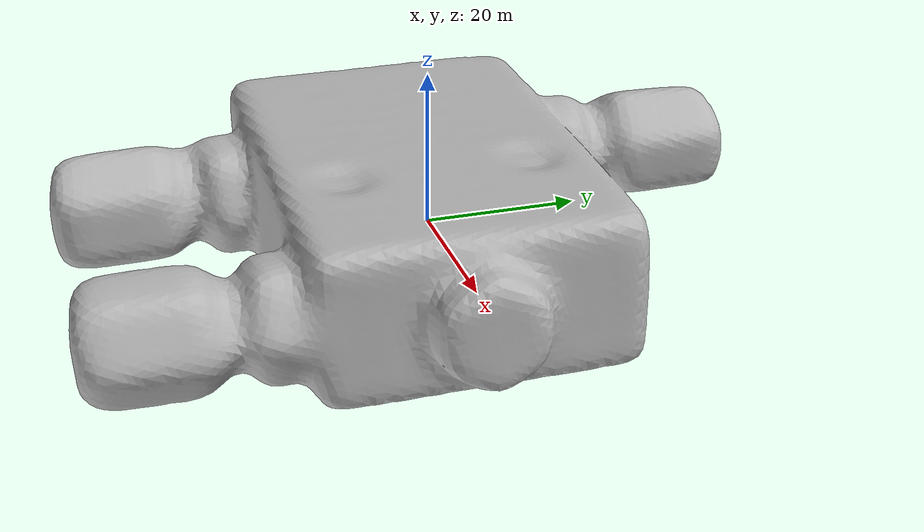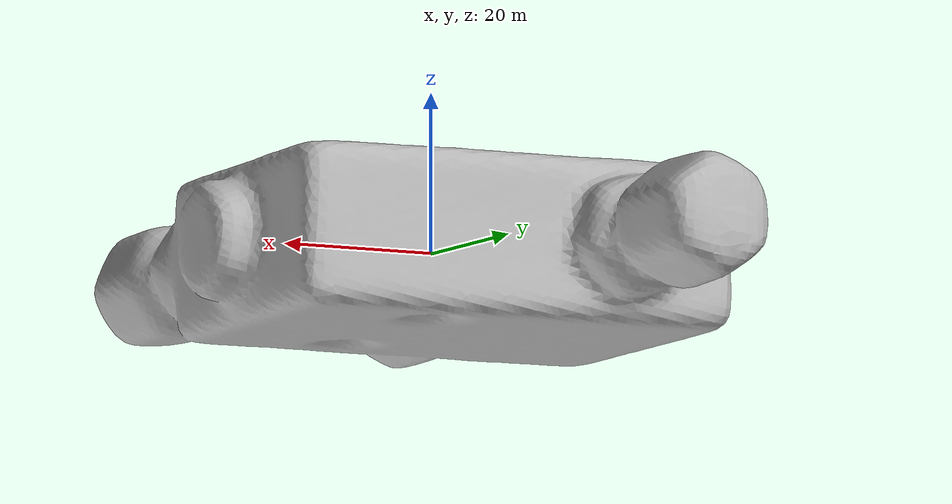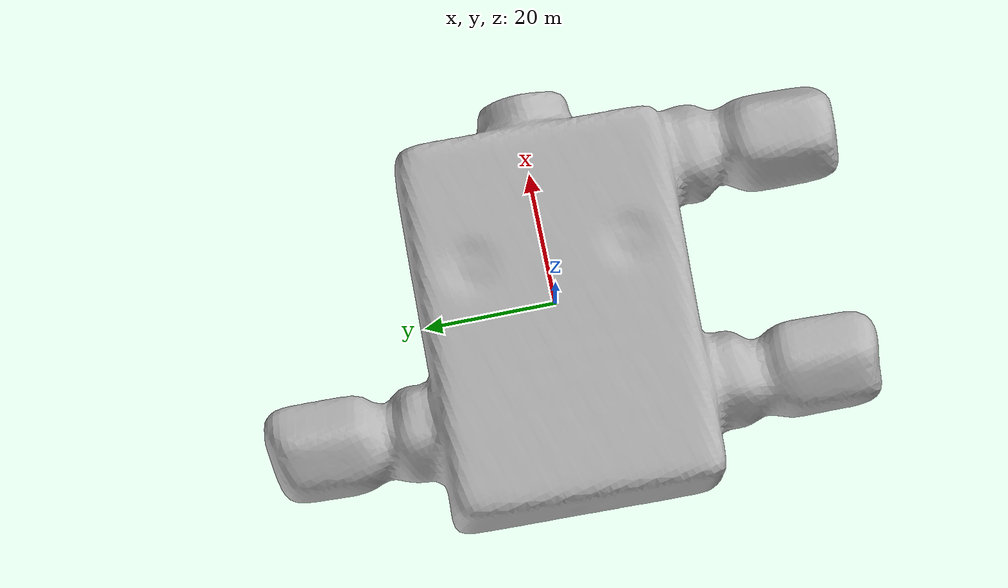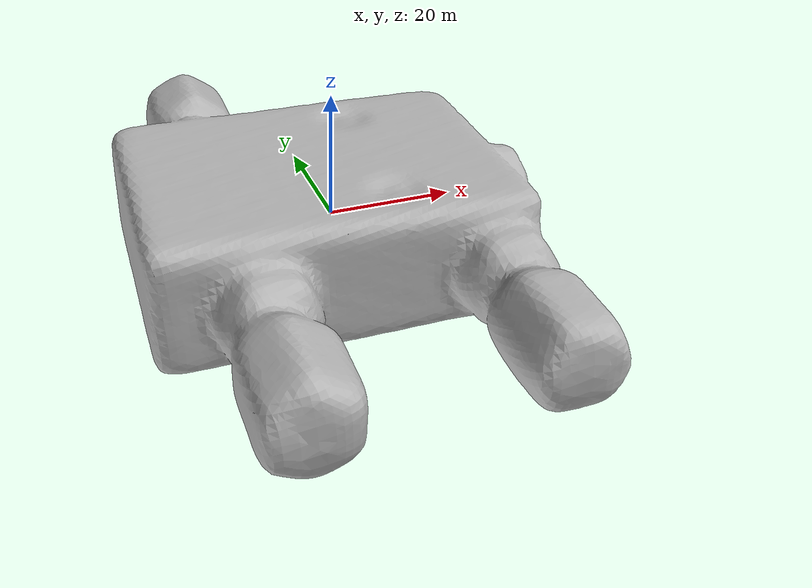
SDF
<?xml version="1.0" ?>
<sdf version="1.6">
  <model name="object_model">
    <static>true</static>
    <link name="link">
      <visual name="visual">
        <geometry>
          <mesh>
            <uri>model://ftv/meshes/obj_000016.stl</uri>
            <scale>1 1 1</scale>
          </mesh>
        </geometry>
      </visual>
      <collision name="collision">
        <geometry>
          <mesh>
            <uri>model://ftv/meshes/obj_000016.stl</uri>
            <scale>1 1 1</scale>
          </mesh>
        </geometry>
      </collision>
    </link>
  </model>
</sdf>
